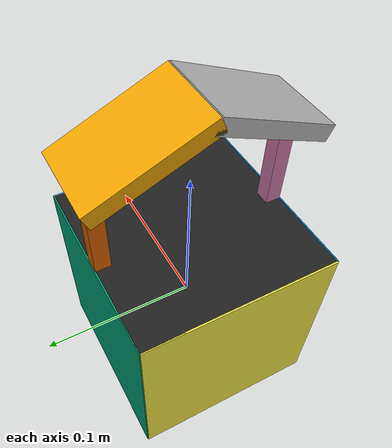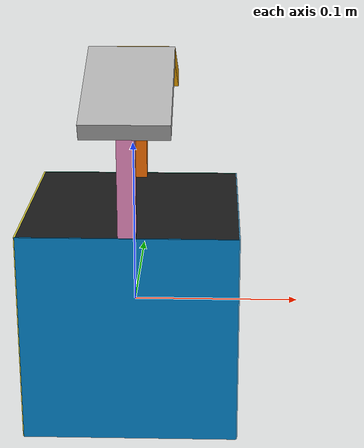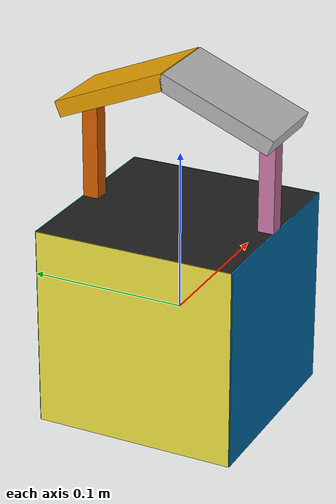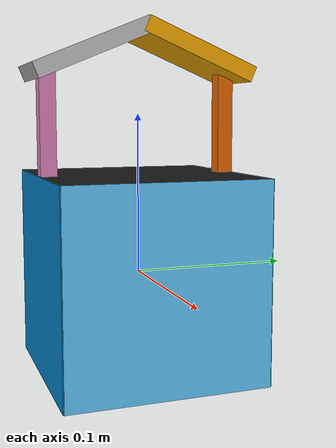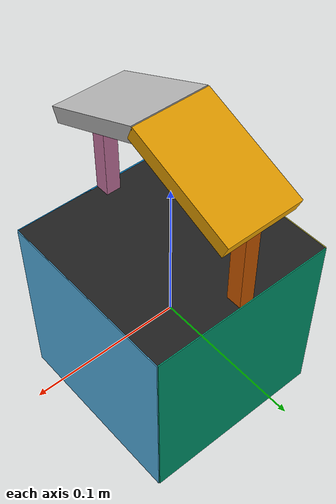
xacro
<?xml version="1.0" ?>

<robot name="aruco_cube" xmlns:xacro="http://ros.org/wiki/xacro">

    <!-- Macro to create a cube with aruco markers attached to it -->
    <xacro:macro name="aruco_cube" >

        <xacro:arg name="use_texture_0to15" default="true"/>
        <xacro:arg name="use_texture_16to31" default="false"/>

        <!-- Gazebo Plugins -->
        <xacro:include filename="$(find example_models)/urdf/aruco_cube/aruco_cube.gazebo.xacro"/>

        <!-- Joints -->

        <!-- Marker planes (joints) -->
        <joint name="aruco_cube_link__marker_plane_1_link" type="fixed">
            <origin xyz="0.0626 0 0" rpy="0 0 0" />
            <parent link="aruco_cube_link" />
            <child link="marker_plane_1_link" />
        </joint>

        <joint name="aruco_cube_link__marker_plane_2_link" type="fixed">
            <origin xyz="0 0.0626 0" rpy="0 0 ${-pi/2}" />
            <parent link="aruco_cube_link" />
            <child link="marker_plane_2_link" />
        </joint>

        <joint name="aruco_cube_link__marker_plane_3_link" type="fixed">
            <origin xyz="-0.0626 0 0" rpy="0 0 ${pi}" />
            <parent link="aruco_cube_link" />
            <child link="marker_plane_3_link" />
        </joint>

        <joint name="aruco_cube_link__marker_plane_4_link" type="fixed">
            <origin xyz="0 -0.0626 0" rpy="0 0 ${pi/2}" />
            <parent link="aruco_cube_link" />
            <child link="marker_plane_4_link" />
        </joint>

        <!-- Handle (joints) -->
        <joint name="aruco_cube_link__handle_side1_link" type="fixed">
            <origin xyz="0 ${0.0675-0.01} 0.125" rpy="0 0 0" />
            <parent link="aruco_cube_link" />
            <child link="handle_side1_link" />
        </joint>

        <joint name="aruco_cube_link__handle_side2_link" type="fixed">
            <origin xyz="0 ${-0.0675+0.01} 0.125" rpy="0 0 0" />
            <parent link="aruco_cube_link" />
            <child link="handle_side2_link" />
        </joint>

        <joint name="aruco_cube_link__handle_top1_link" type="fixed">
            <origin xyz="0 ${-0.0625/2} ${0.125 + 0.018/2}" rpy="${pi/8} 0 0" />
            <parent link="aruco_cube_link" />
            <child link="handle_top1_link" />
        </joint>

        <joint name="aruco_cube_link__handle_top2_link" type="fixed">
            <origin xyz="0 ${0.0625/2} ${0.125 + 0.018/2}" rpy="${-pi/8} 0 0" />
            <parent link="aruco_cube_link" />
            <child link="handle_top2_link" />
        </joint>

        <!-- Links -->
        <!-- Cube (link) -->
        <link name="aruco_cube_link">
            <visual>
                <origin xyz="0 0 0" rpy="0 0 0" />
                <geometry>
                    <box size="0.125 0.125 0.125" />
                </geometry>
            </visual>
            <collision>
                <origin xyz="0 0 0" rpy="0 0 0" />
                <geometry>
                    <box size="0.125 0.125 0.125" />
                </geometry>
            </collision>

            <inertial>
                <mass value="0.01" />
                <inertia ixx="${1/12*0.01*(2*0.125**2)}" ixy="0" ixz="0" iyy="${1/12*0.01*(2*0.125**2)}" iyz="0" izz="${1/12*0.01*(2*0.125**2)}" />
            </inertial>
        </link>

        <!-- Marker (links) -->
        <link name="marker_plane_1_link">
            <visual>
                <origin xyz="0 0 0" rpy="0 0 0" />
                <geometry>
                    <box size="0.001 0.125 0.125" />
                </geometry>
            </visual>
            <collision>
                <origin xyz="0 0 0" rpy="0 0 0" />
                <geometry>
                    <box size="0.001 0.125 0.125" />
                </geometry>
            </collision>

            <inertial>
                <mass value="0.001" />
                <inertia ixx="0.0001" ixy="0" ixz="0" iyy="0.0001" iyz="0" izz="0.0001" />
            </inertial>
        </link>

        <link name="marker_plane_2_link">
            <visual>
                <origin xyz="0 0 0" rpy="0 0 0" />
                <geometry>
                    <box size="0.001 0.125 0.125" />
                </geometry>
            </visual>
            <collision>
                <origin xyz="0 0 0" rpy="0 0 0" />
                <geometry>
                    <box size="0.001 0.125 0.125" />
                </geometry>
            </collision>

            <inertial>
                <mass value="0.001" />
                <inertia ixx="0.0001" ixy="0" ixz="0" iyy="0.0001" iyz="0" izz="0.0001" />
            </inertial>
        </link>

        <link name="marker_plane_3_link">
            <visual>
                <origin xyz="0 0 0" rpy="0 0 0" />
                <geometry>
                    <box size="0.001 0.125 0.125" />
                </geometry>
            </visual>
            <collision>
                <origin xyz="0 0 0" rpy="0 0 0" />
                <geometry>
                    <box size="0.001 0.125 0.125" />
                </geometry>
            </collision>

            <inertial>
                <mass value="0.001" />
                <inertia ixx="0.0001" ixy="0" ixz="0" iyy="0.0001" iyz="0" izz="0.0001" />
            </inertial>
        </link>

        <link name="marker_plane_4_link">
            <visual>
                <origin xyz="0 0 0" rpy="0 0 0" />
                <geometry>
                    <box size="0.001 0.125 0.125" />
                </geometry>
            </visual>
            <collision>
                <origin xyz="0 0 0" rpy="0 0 0" />
                <geometry>
                    <box size="0.001 0.125 0.125" />
                </geometry>
            </collision>

            <inertial>
                <mass value="0.001" />
                <inertia ixx="0.0001" ixy="0" ixz="0" iyy="0.0001" iyz="0" izz="0.0001" />
            </inertial>
        </link>

        <!-- Handle (link) -->
        <link name="handle_side1_link">
            <visual>
                <origin xyz="0 0 -0.03125" rpy="0 0 0" />
                <geometry>
                    <box size="0.01 0.01 0.0625" />
                </geometry>
            </visual>
            <collision>
                <origin xyz="0 0 -0.03125" rpy="0 0 0" />
                <geometry>
                    <box size="0.01 0.01 0.0625" />
                </geometry>
            </collision>

            <inertial>
                <mass value="0.001" />
                <inertia ixx="0.0001" ixy="0" ixz="0" iyy="0.0001" iyz="0" izz="0.0001" />
            </inertial>
        </link>

        <link name="handle_side2_link">
            <visual>
                <origin xyz="0 0 -0.03125" rpy="0 0 0" />
                <geometry>
                    <box size="0.01 0.01 0.0625" />
                </geometry>
            </visual>
            <collision>
                <origin xyz="0 0 -0.03125" rpy="0 0 0" />
                <geometry>
                    <box size="0.01 0.01 0.0625" />
                </geometry>
            </collision>

            <inertial>
                <mass value="0.001" />
                <inertia ixx="0.0001" ixy="0" ixz="0" iyy="0.0001" iyz="0" izz="0.0001" />
            </inertial>
        </link>

        <link name="handle_top1_link">
            <visual>
                <origin xyz="0 0 0.005" rpy="0 0 0" />
                <geometry>
                    <box size="0.05 0.075 0.01" />
                </geometry>
            </visual>
            <collision>
                <origin xyz="0 0 0.005" rpy="0 0 0" />
                <geometry>
                    <box size="0.05 0.075 0.01" />
                </geometry>
            </collision>

            <inertial>
                <mass value="0.001" />
                <inertia ixx="0.0001" ixy="0" ixz="0" iyy="0.0001" iyz="0" izz="0.0001" />
            </inertial>
        </link>

        <link name="handle_top2_link">
            <visual>
                <origin xyz="0 0 0.005" rpy="0 0 0" />
                <geometry>
                    <box size="0.05 0.075 0.01" />
                </geometry>
            </visual>
            <collision>
                <origin xyz="0 0 0.005" rpy="0 0 0" />
                <geometry>
                    <box size="0.05 0.075 0.01" />
                </geometry>
            </collision>

            <inertial>
                <mass value="0.001" />
                <inertia ixx="0.0001" ixy="0" ixz="0" iyy="0.0001" iyz="0" izz="0.0001" />
            </inertial>
        </link>

    </xacro:macro>

    <!-- execute the macro (spawn the cube) -->
    <xacro:aruco_cube />
</robot>
